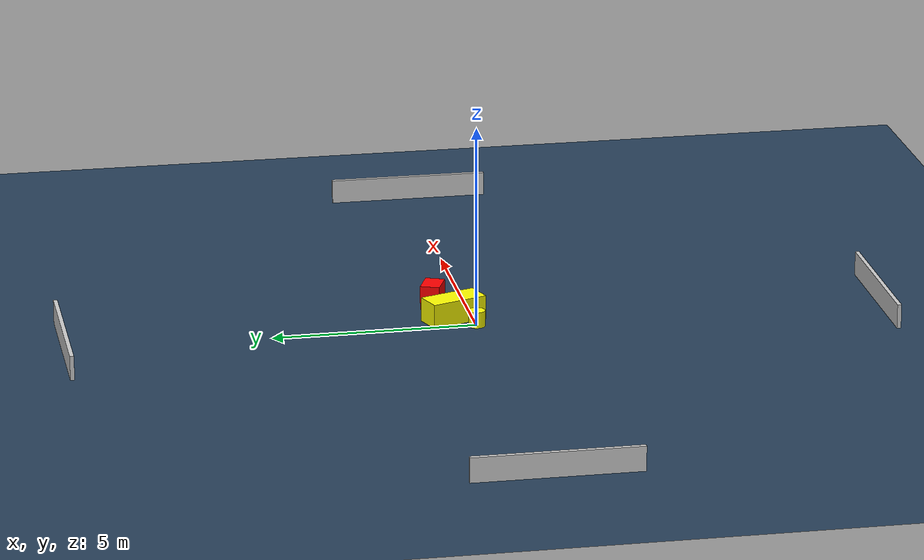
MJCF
<?xml version="1.0" ?>
<mujoco model="generated_environment">
  <option timestep="0.01" integrator="RK4" cone="elliptic"/>
  <default>
    <geom density="1"/>
  </default>
  <asset>
    <texture builtin="gradient" height="3072" name="skybox" rgb1="0.3 0.5 0.7" rgb2="0 0 0" type="skybox" width="512"/>
    <texture builtin="checker" height="300" name="groundplane" rgb1="0.2 0.3 0.4" rgb2="0.1 0.2 0.3" type="2d" width="300"/>
    <material name="groundplane" reflectance="0.2" texrepeat="5 5" texture="groundplane"/>
  </asset>
  <worldbody>
    <light dir="0 0 -1" directional="true" pos="0 0 1.5"/>
    <geom condim="3" friction="0.5 0.005 0.001" material="groundplane" name="floor" pos="0 0 0" size="0 0 0.05" type="plane"/>
    <body name="walls">
      <geom name="wall_1" condim="4" pos="-10.0 0.0 0.3" rgba="0.800000011920929 0.800000011920929 0.800000011920929 1.0" size="0.05 2.0 0.3" type="box"/>
      <geom name="wall_2" condim="4" pos="10.0 0.0 0.3" rgba="0.800000011920929 0.800000011920929 0.800000011920929 1.0" size="0.05 2.0 0.3" type="box"/>
      <geom name="wall_3" condim="4" pos="0.0 -10.0 0.3" rgba="0.800000011920929 0.800000011920929 0.800000011920929 1.0" size="2.0 0.05 0.3" type="box"/>
      <geom name="wall_4" condim="4" pos="0.0 10.0 0.3" rgba="0.800000011920929 0.800000011920929 0.800000011920929 1.0" size="2.0 0.05 0.3" type="box"/>
    </body>
    <body name="robot">
      <joint name="joint_x" type="slide" pos="0 0 0" axis="1 0 0"/>
      <joint name="joint_y" type="slide" pos="0 0 0" axis="0 1 0"/>
      <geom name="robot" type="cylinder" pos="0.0 0.0 0.2" size="0.2 0.2 0.0" mass="5.0" friction="1.0 0.005 0.0001" condim="4" rgba="1.0 1.0 0.0 1.0"/>
    </body>
    <body name="obstacle_1_movable">
      <geom name="obstacle_1_movable" condim="4" pos="0.5141312331741078 0.47823257827048626 0.3" euler="0 0 19.415047956148147" friction="0.0 0.005 0.001" rgba="1.0 1.0 0.0 1.0" size="0.32675949181784164 0.7158114443719419 0.3" type="box" mass="0.1"/>
      <joint type="free"/>
    </body>
    <body name="obstacle_2_static">
      <geom name="obstacle_2_static" condim="4" pos="1.6045506220187418 0.8081277844611358 0.3" euler="0 0 68.26909203174031" friction="0.0 0.005 0.001" rgba="1.0 0.0 0.0 1.0" size="0.23957791329465256 0.32519739177108353 0.3" type="box"/>
    </body>
  </worldbody>
  <actuator>
    <motor name="actuator_x" joint="joint_x" gear="1" ctrlrange="-1 1"/>
    <motor name="actuator_y" joint="joint_y" gear="1" ctrlrange="-1 1"/>
  </actuator>
</mujoco>
